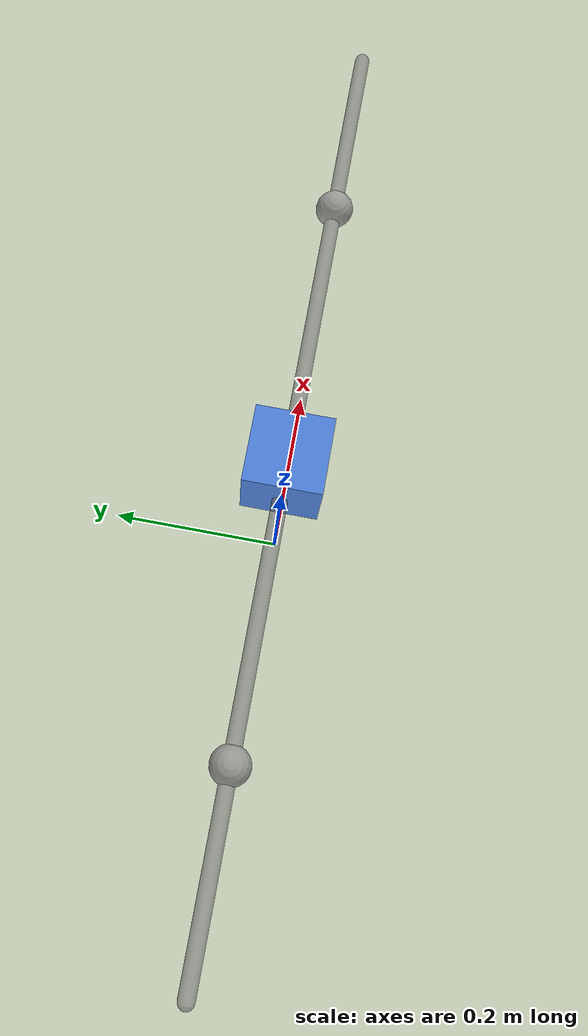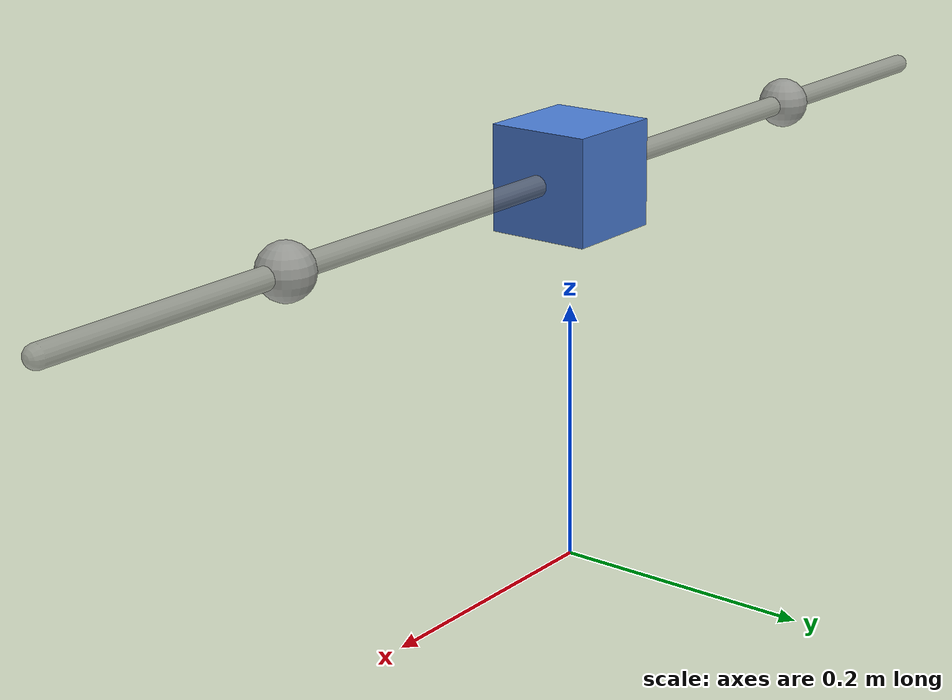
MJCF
<mujoco model="slide-limits">
  <option gravity="0 0 0" timestep="0.002"/>

  <worldbody>
    <!-- Rail visual (non-colliding) -->
    <geom name="rail" type="capsule" fromto="-0.5 0 0.3 0.5 0 0.3"
          size="0.008" rgba="0.5 0.5 0.5 0.6" contype="0" conaffinity="0"/>

    <!-- Left endstop visual -->
    <geom name="stop_lo" type="sphere" size="0.02"
          pos="-0.3 0 0.3" rgba="0.6 0.6 0.6 0.8" contype="0" conaffinity="0"/>

    <!-- Right endstop visual -->
    <geom name="stop_hi" type="sphere" size="0.02"
          pos="0.3 0 0.3" rgba="0.6 0.6 0.6 0.8" contype="0" conaffinity="0"/>

    <body name="slider" pos="0 0 0.3">
      <joint name="slide" type="slide" axis="1 0 0"
             limited="true" range="-0.3 0.3" damping="2.0"/>
      <geom name="slider_geom" type="box" size="0.04 0.04 0.04" mass="1.0"
            rgba="0.3 0.5 0.85 1"/>
    </body>
  </worldbody>

  <actuator>
    <motor name="push" joint="slide" gear="1"/>
  </actuator>

  <sensor>
    <jointlimitfrc name="slide_lf" joint="slide"/>
  </sensor>
</mujoco>
